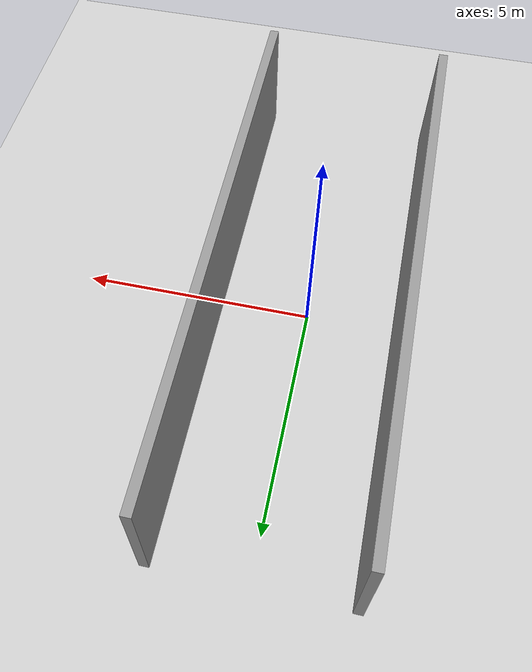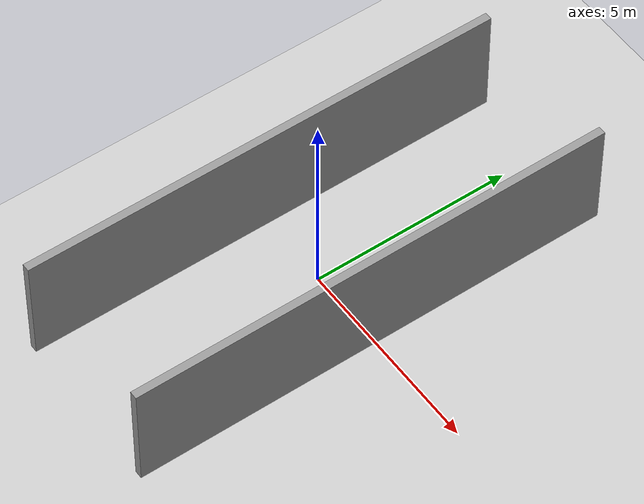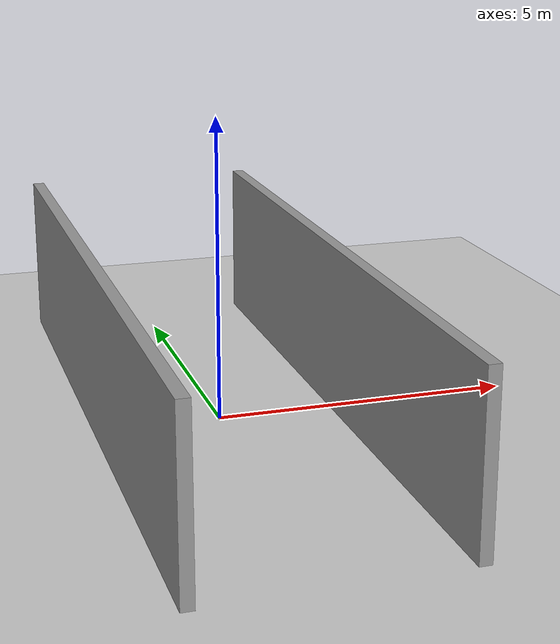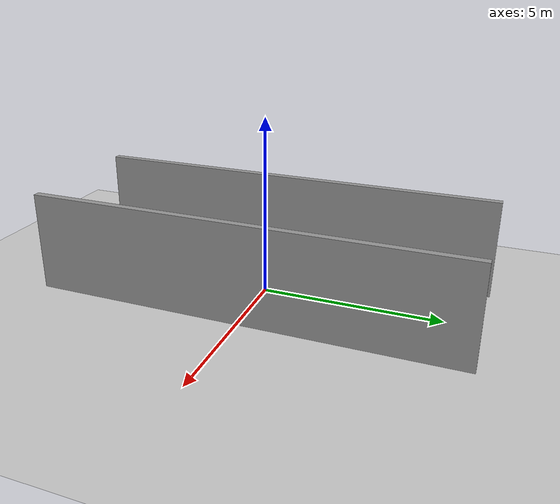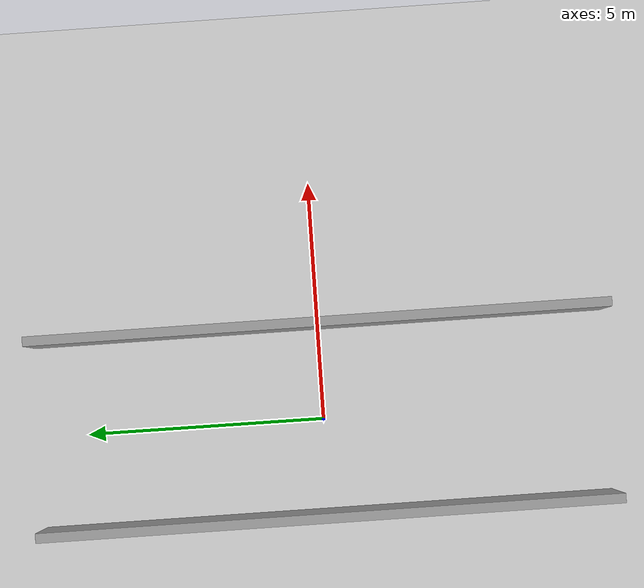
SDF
<?xml version="1.0" ?>
  <!-- this file is auto generated using pedsim_gazebo_plugin pkg -->
  <sdf version="1.5">
    <world name="default">

    <gui>
      <camera name="user_camera">
        <pose>0 0 16 0 1.5707 3.14159</pose>
      </camera>
    </gui>

    <!-- Ground Plane -->
    <include>
      <uri>model://ground_plane</uri>
    </include>

    <include>
      <uri>model://sun</uri>
    </include>

    <model name='grey_wall_1'>
      <static>1</static>
      <link name='link'>
        <pose frame=''>-2.0 0.0  1.4 0 0 1.57</pose>
        <collision name='collision'>
          <geometry>
            <box>
              <size> 12.0 0.2  2.8 </size>
            </box>
          </geometry>
          <max_contacts>10</max_contacts>
          <surface>
            <contact>
              <ode/>
            </contact>
            <bounce/>
            <friction>
              <torsional>
                <ode/>
              </torsional>
              <ode/>
            </friction>
          </surface>
        </collision>
        <visual name='visual'>
          <cast_shadows>0</cast_shadows>
          <geometry>
            <box>
              <size> 12.0 0.2  2.8 </size>
            </box>
          </geometry>
            <material>
              <script>
                <uri>model://grey_wall/materials/scripts</uri>
                <uri>model://grey_wall/materials/textures</uri>
                <name>vrc/grey_wall</name>
              </script>
            </material>
        </visual>
        <self_collide>0</self_collide>
        <enable_wind>0</enable_wind>
        <kinematic>0</kinematic>
      </link>
    </model>

    <model name='grey_wall_2'>
      <static>1</static>
      <link name='link'>
        <pose frame=''>2.0 0.0  1.4 0 0 1.57</pose>
        <collision name='collision'>
          <geometry>
            <box>
              <size> 12.0 0.2  2.8 </size>
            </box>
          </geometry>
          <max_contacts>10</max_contacts>
          <surface>
            <contact>
              <ode/>
            </contact>
            <bounce/>
            <friction>
              <torsional>
                <ode/>
              </torsional>
              <ode/>
            </friction>
          </surface>
        </collision>
        <visual name='visual'>
          <cast_shadows>0</cast_shadows>
          <geometry>
            <box>
              <size> 12.0 0.2  2.8 </size>
            </box>
          </geometry>
            <material>
              <script>
                <uri>model://grey_wall/materials/scripts</uri>
                <uri>model://grey_wall/materials/textures</uri>
                <name>vrc/grey_wall</name>
              </script>
            </material>
        </visual>
        <self_collide>0</self_collide>
        <enable_wind>0</enable_wind>
        <kinematic>0</kinematic>
      </link>
    </model>

    <plugin name="ActorPosesPlugin" filename="libActorPosesPlugin.so">
    </plugin>
	<plugin name='gazebo_occupancy_map' filename='libgazebo_2Dmap_plugin.so'>
	    <map_resolution>0.05</map_resolution> <!-- in meters, optional, default 0.1 -->
	    <map_height>0.3</map_height>         <!-- in meters, optional, default 0.3 -->
	    <map_size_x>30</map_size_x>          <!-- in meters, optional, default 10 -->
	    <map_size_y>30</map_size_y>          <!-- in meters, optional, default 10 -->
	    <init_robot_x>0</init_robot_x>          <!-- x coordinate in meters, optional, default 0 -->
	    <init_robot_y>0</init_robot_y>          <!-- y coordinate in meters, optional, default 0 -->
	</plugin>

  </world>
</sdf>
